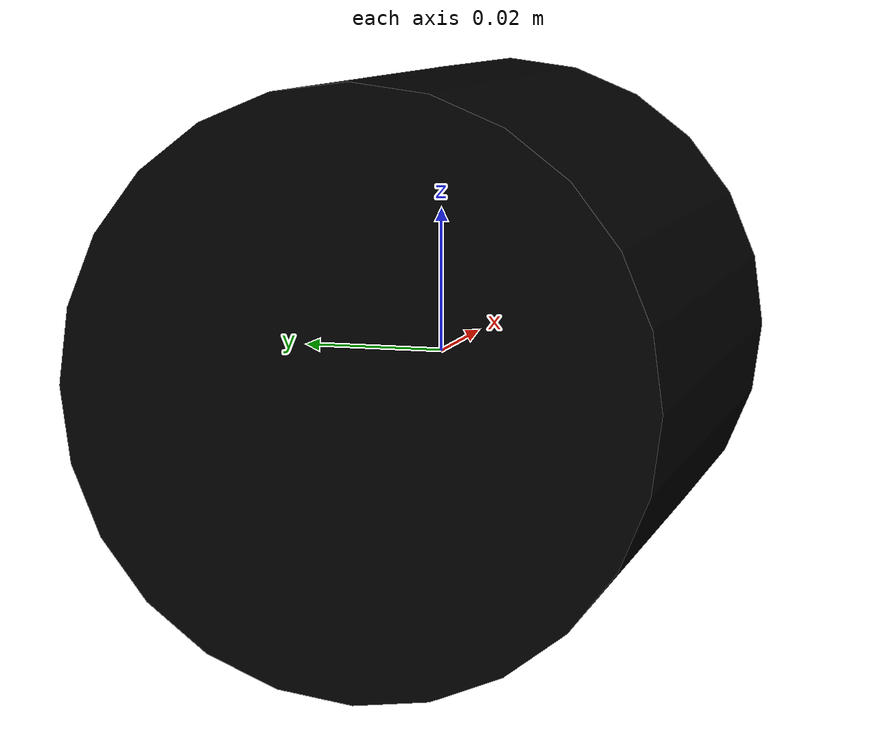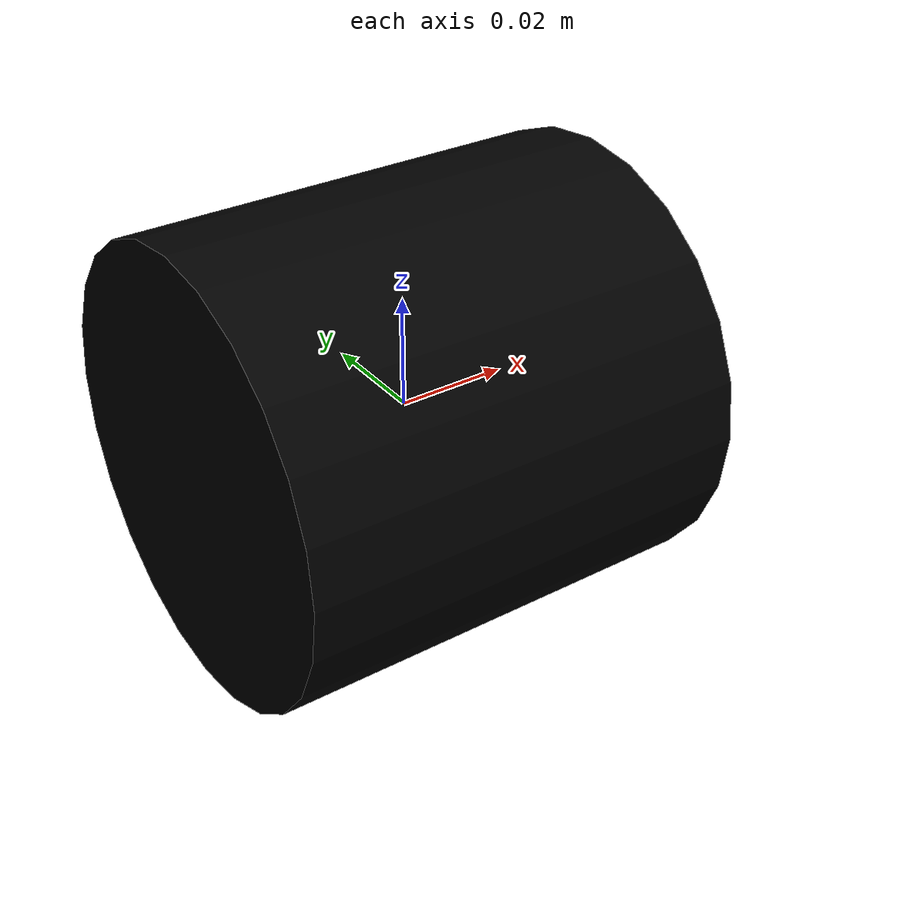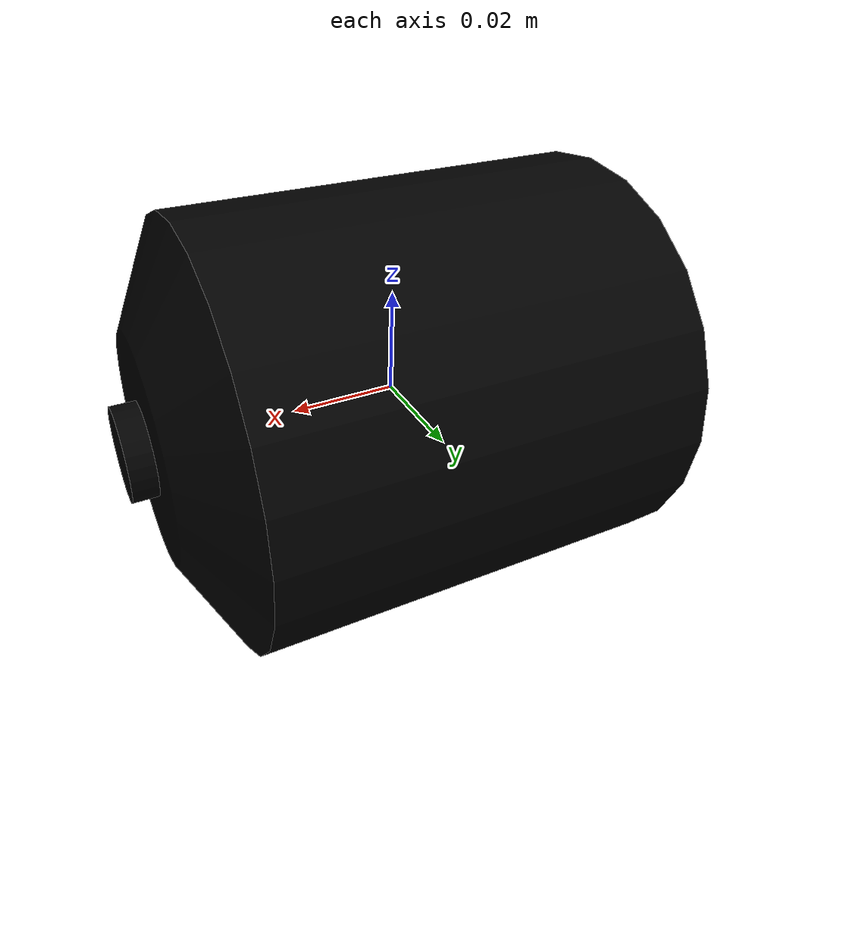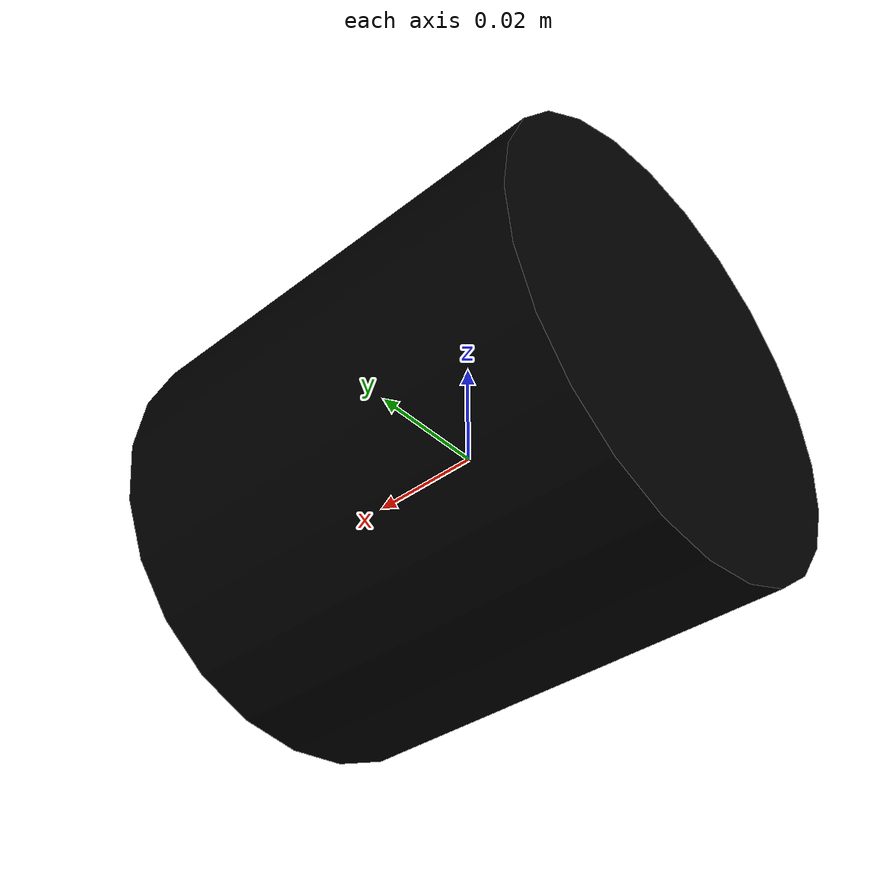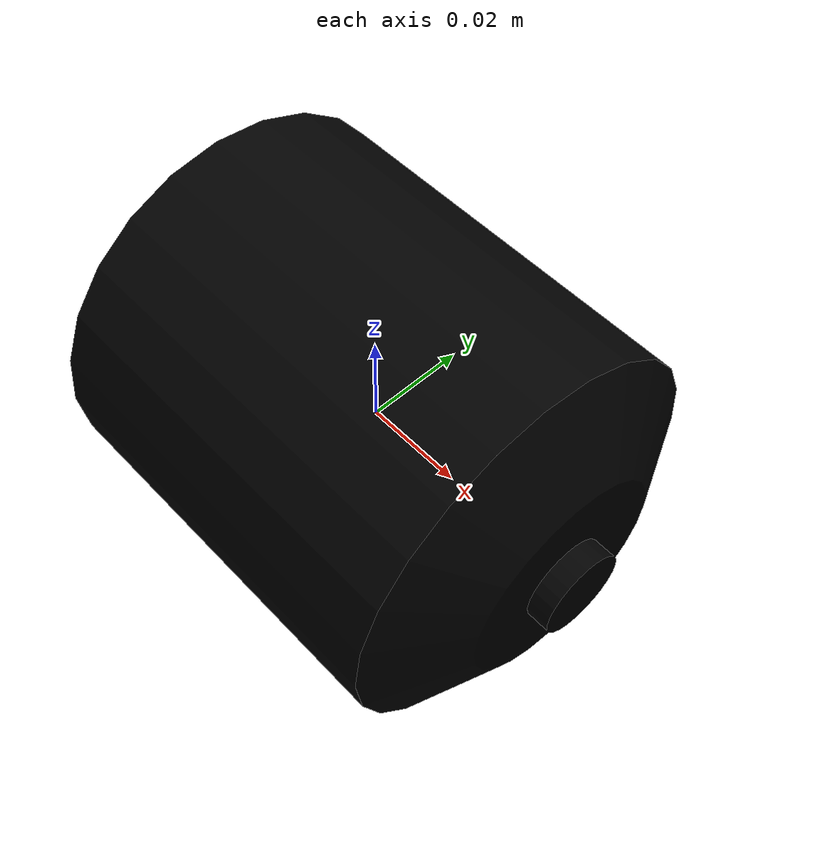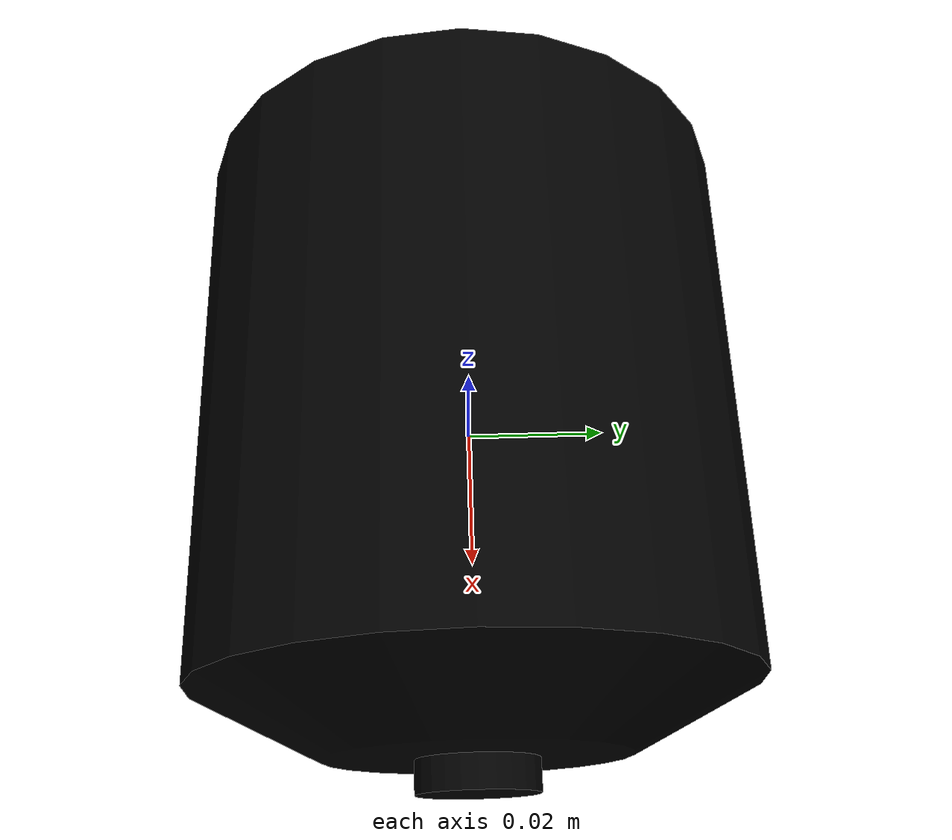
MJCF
<mujoco model="arm_r_link6">
  <default>
    <default class="visual">
      <geom group="2" type="mesh" contype="0" conaffinity="0"/>
    </default>
    <default class="collision">
      <geom group="3" type="mesh"/>
    </default>
  </default>
  <asset>
    <material name="material_arm_r_link6_0" specular="0.20000000000000004" shininess="1.0" rgba="0.00000000 0.00000000 0.00000000 1.0"/>
    <mesh file="arm_r_link6.obj"/>
  </asset>
  <worldbody>
    <body name="arm_r_link6">
      <geom material="material_arm_r_link6_0" mesh="arm_r_link6" class="visual"/>
      <geom mesh="arm_r_link6" class="collision"/>
    </body>
  </worldbody>
</mujoco>
